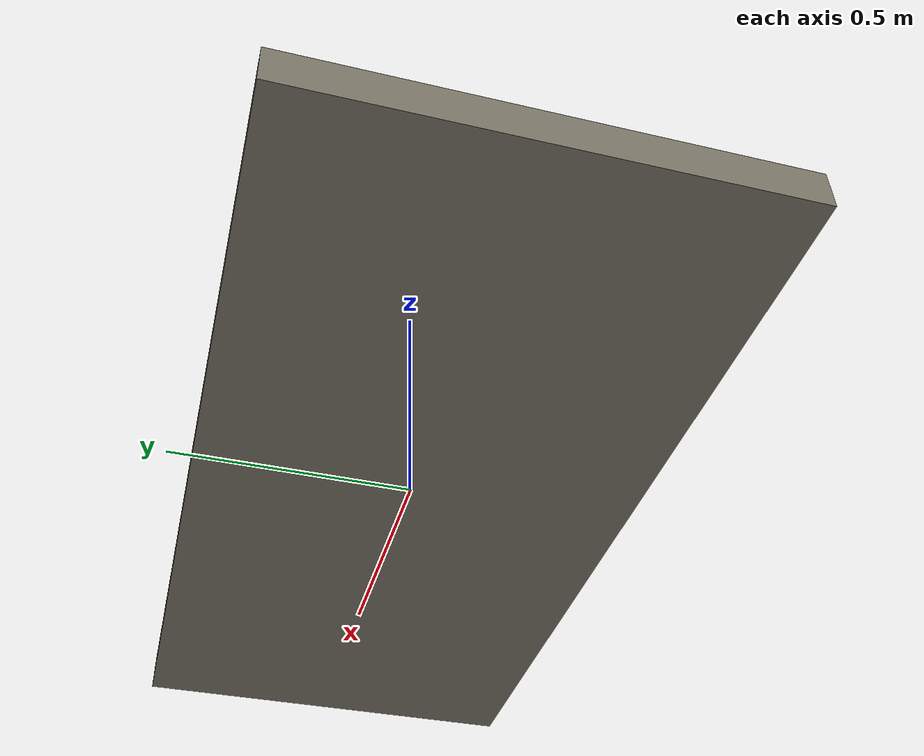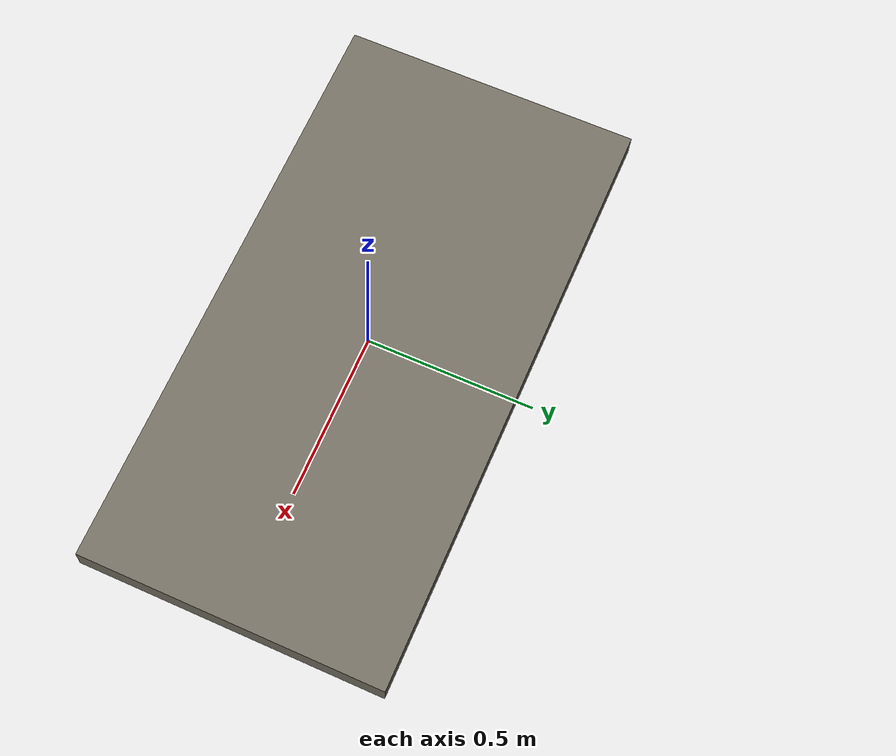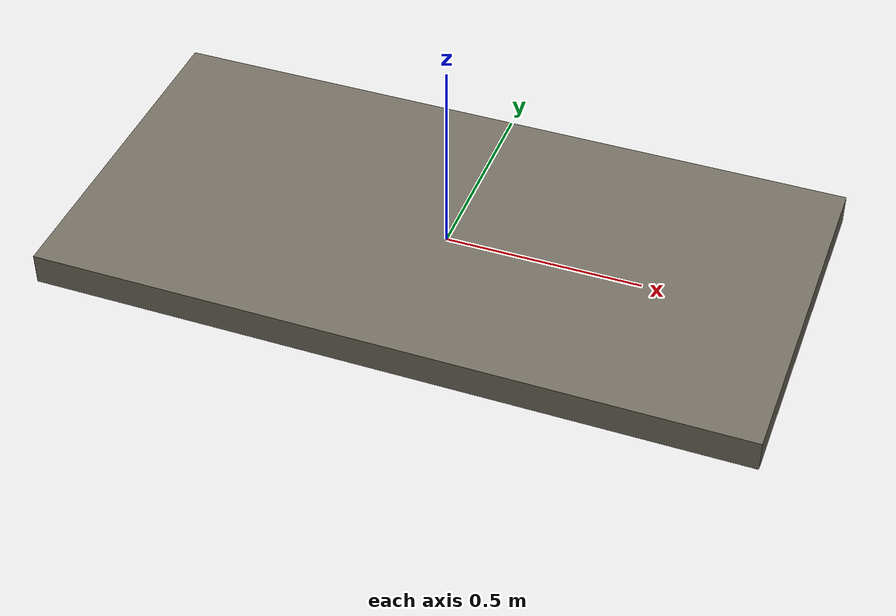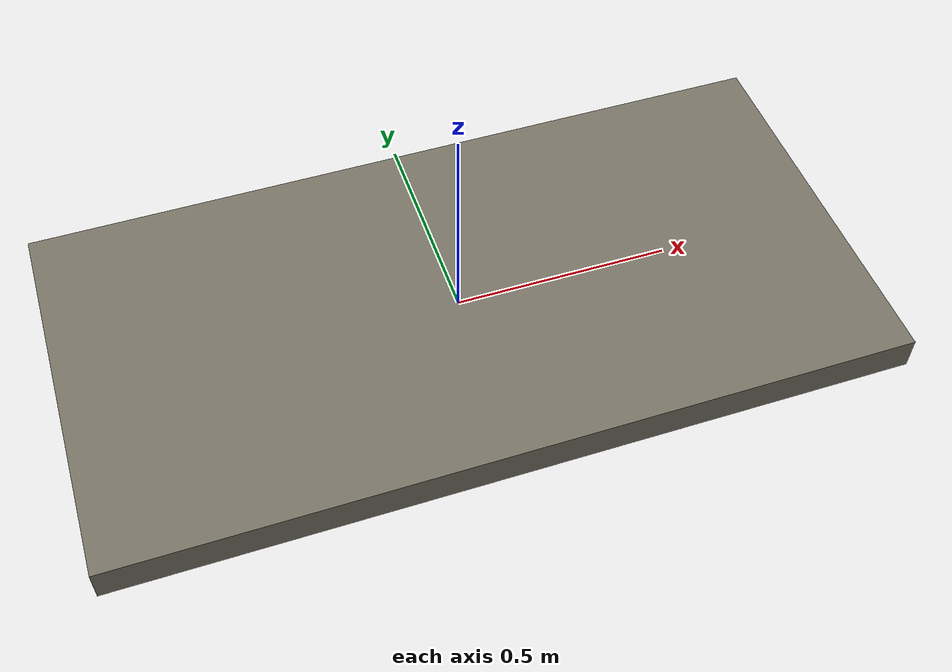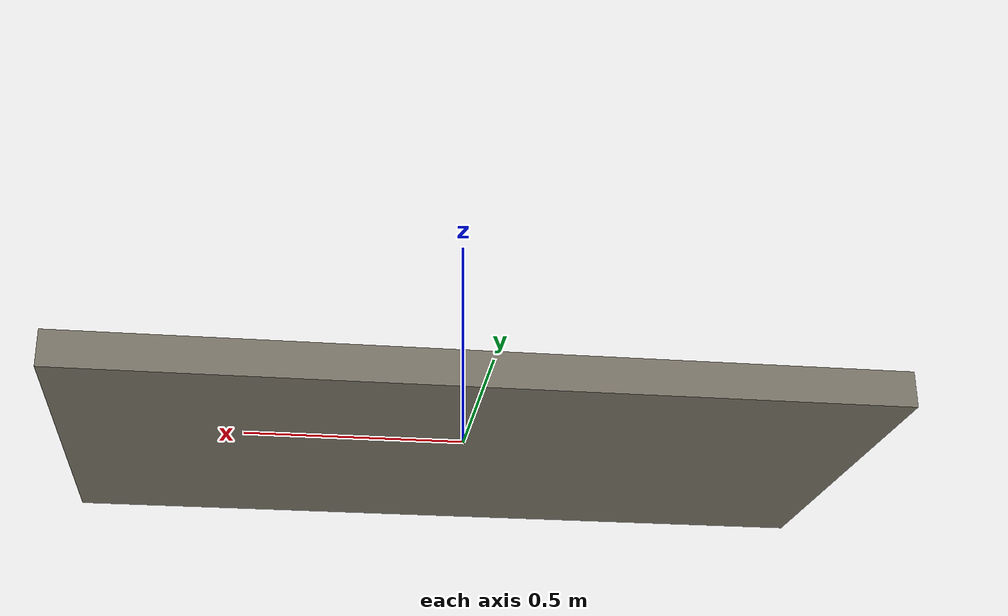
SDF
<?xml version="1.0"?>
<sdf version="1.7">
  <model name="work_table">
    <static>true</static>
    <link name="link">
      <collision name="collision">
        <geometry>
          <box>
            <size>1.8 0.9 0.08</size>
          </box>
        </geometry>
      </collision>
      <visual name="visual">
        <geometry>
          <box>
            <size>1.8 0.9 0.08</size>
          </box>
        </geometry>
        <material>
          <ambient>0.26 0.25 0.23 1</ambient>
          <diffuse>0.45 0.43 0.38 1</diffuse>
        </material>
      </visual>
    </link>
  </model>
</sdf>
